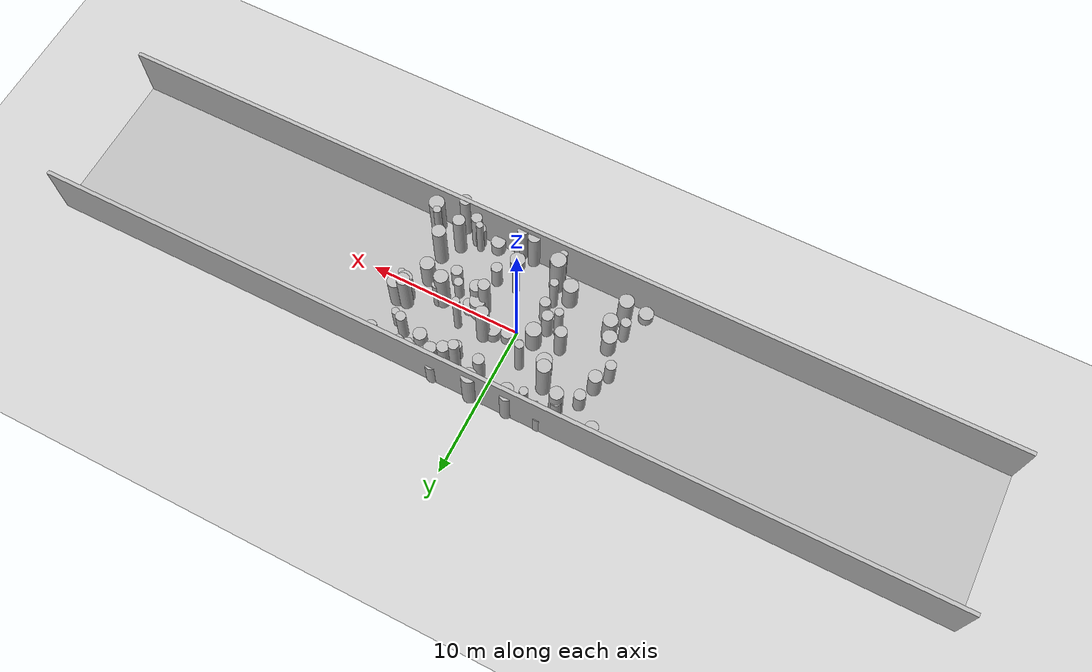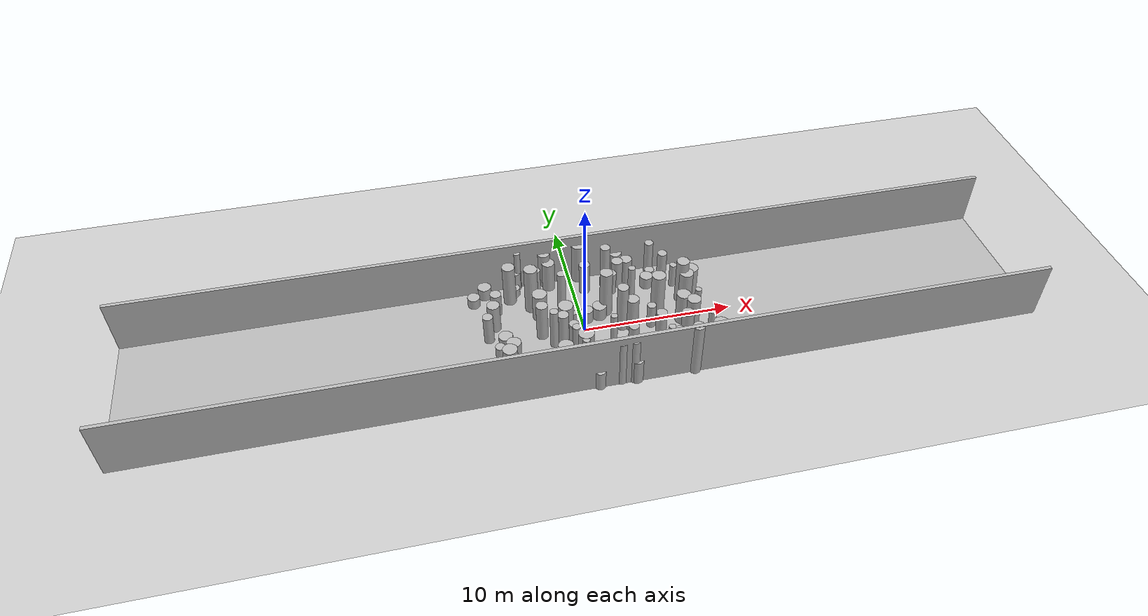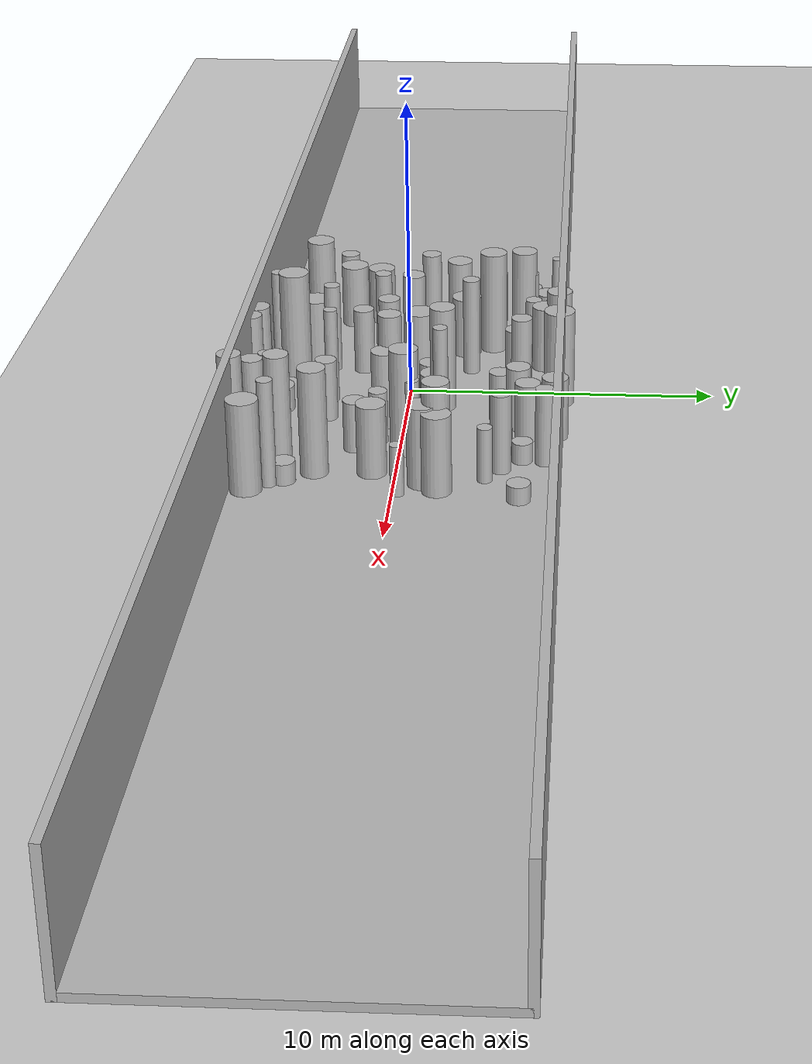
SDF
<sdf version="1.4">
 <world name="default">
  <include><uri>model://ground_plane</uri></include>
  <include><uri>model://sun</uri></include>
  <model name="forest">
   <static>true</static>
   <link name="cylinder1">
    <pose>3.2564242032673008 0.07752517679849902 0.6887090707186099 0 0 0</pose>
    <visual name="visual">
     <geometry>
      <cylinder><radius>0.3346961968090023</radius><length>1.3774181414372197</length></cylinder>
     </geometry>
    </visual>
    <collision name="collision">
     <geometry>
      <cylinder><radius>0.3346961968090023</radius><length>1.3774181414372197</length></cylinder>
     </geometry>
     <max_contacts>0</max_contacts>
    </collision>
   </link>
   <link name="cylinder3">
    <pose>-5.122488635472312 -2.3613867359242913 1.2156791975781638 0 0 0</pose>
    <visual name="visual">
     <geometry>
      <cylinder><radius>0.4657114707113331</radius><length>2.4313583951563276</length></cylinder>
     </geometry>
    </visual>
    <collision name="collision">
     <geometry>
      <cylinder><radius>0.4657114707113331</radius><length>2.4313583951563276</length></cylinder>
     </geometry>
     <max_contacts>0</max_contacts>
    </collision>
   </link>
   <link name="cylinder7">
    <pose>-2.8999232739820577 -0.09374757711382031 1.506481006574513 0 0 0</pose>
    <visual name="visual">
     <geometry>
      <cylinder><radius>0.3824475917245142</radius><length>3.012962013149026</length></cylinder>
     </geometry>
    </visual>
    <collision name="collision">
     <geometry>
      <cylinder><radius>0.3824475917245142</radius><length>3.012962013149026</length></cylinder>
     </geometry>
     <max_contacts>0</max_contacts>
    </collision>
   </link>
   <link name="cylinder9">
    <pose>-1.802328232285305 4.905136888040609 1.4747844364075426 0 0 0</pose>
    <visual name="visual">
     <geometry>
      <cylinder><radius>0.4163657963996544</radius><length>2.9495688728150853</length></cylinder>
     </geometry>
    </visual>
    <collision name="collision">
     <geometry>
      <cylinder><radius>0.4163657963996544</radius><length>2.9495688728150853</length></cylinder>
     </geometry>
     <max_contacts>0</max_contacts>
    </collision>
   </link>
   <link name="cylinder10">
    <pose>6.791761685345708 2.8088955088722827 1.023787186079001 0 0 0</pose>
    <visual name="visual">
     <geometry>
      <cylinder><radius>0.23918400872475332</radius><length>2.047574372158002</length></cylinder>
     </geometry>
    </visual>
    <collision name="collision">
     <geometry>
      <cylinder><radius>0.23918400872475332</radius><length>2.047574372158002</length></cylinder>
     </geometry>
     <max_contacts>0</max_contacts>
    </collision>
   </link>
   <link name="cylinder14">
    <pose>-0.9298519685459574 -4.436935589565988 1.9091290417879494 0 0 0</pose>
    <visual name="visual">
     <geometry>
      <cylinder><radius>0.23941363625729387</radius><length>3.818258083575899</length></cylinder>
     </geometry>
    </visual>
    <collision name="collision">
     <geometry>
      <cylinder><radius>0.23941363625729387</radius><length>3.818258083575899</length></cylinder>
     </geometry>
     <max_contacts>0</max_contacts>
    </collision>
   </link>
   <link name="cylinder15">
    <pose>6.104734048057843 3.266509318063447 1.4293813778876574 0 0 0</pose>
    <visual name="visual">
     <geometry>
      <cylinder><radius>0.32012026691112394</radius><length>2.858762755775315</length></cylinder>
     </geometry>
    </visual>
    <collision name="collision">
     <geometry>
      <cylinder><radius>0.32012026691112394</radius><length>2.858762755775315</length></cylinder>
     </geometry>
     <max_contacts>0</max_contacts>
    </collision>
   </link>
   <link name="cylinder16">
    <pose>5.537779644955908 4.593302339712308 1.3898717767210509 0 0 0</pose>
    <visual name="visual">
     <geometry>
      <cylinder><radius>0.29707722237790335</radius><length>2.7797435534421018</length></cylinder>
     </geometry>
    </visual>
    <collision name="collision">
     <geometry>
      <cylinder><radius>0.29707722237790335</radius><length>2.7797435534421018</length></cylinder>
     </geometry>
     <max_contacts>0</max_contacts>
    </collision>
   </link>
   <link name="cylinder17">
    <pose>-4.492476951617313 3.7887865394801725 1.2449095618742323 0 0 0</pose>
    <visual name="visual">
     <geometry>
      <cylinder><radius>0.34079880354094694</radius><length>2.4898191237484646</length></cylinder>
     </geometry>
    </visual>
    <collision name="collision">
     <geometry>
      <cylinder><radius>0.34079880354094694</radius><length>2.4898191237484646</length></cylinder>
     </geometry>
     <max_contacts>0</max_contacts>
    </collision>
   </link>
   <link name="cylinder21">
    <pose>6.955385285126042 1.345967827157315 1.8070522659248547 0 0 0</pose>
    <visual name="visual">
     <geometry>
      <cylinder><radius>0.42112964293394906</radius><length>3.6141045318497094</length></cylinder>
     </geometry>
    </visual>
    <collision name="collision">
     <geometry>
      <cylinder><radius>0.42112964293394906</radius><length>3.6141045318497094</length></cylinder>
     </geometry>
     <max_contacts>0</max_contacts>
    </collision>
   </link>
   <link name="cylinder22">
    <pose>6.044731473526809 -4.981266680851473 1.986304914909412 0 0 0</pose>
    <visual name="visual">
     <geometry>
      <cylinder><radius>0.3771859304635002</radius><length>3.972609829818824</length></cylinder>
     </geometry>
    </visual>
    <collision name="collision">
     <geometry>
      <cylinder><radius>0.3771859304635002</radius><length>3.972609829818824</length></cylinder>
     </geometry>
     <max_contacts>0</max_contacts>
    </collision>
   </link>
   <link name="cylinder25">
    <pose>-0.17187193934478628 -4.988892364082588 0.6999133182070076 0 0 0</pose>
    <visual name="visual">
     <geometry>
      <cylinder><radius>0.3573136815506278</radius><length>1.3998266364140153</length></cylinder>
     </geometry>
    </visual>
    <collision name="collision">
     <geometry>
      <cylinder><radius>0.3573136815506278</radius><length>1.3998266364140153</length></cylinder>
     </geometry>
     <max_contacts>0</max_contacts>
    </collision>
   </link>
   <link name="cylinder27">
    <pose>-3.634349828456262 4.81314828473171 1.6950890789939468 0 0 0</pose>
    <visual name="visual">
     <geometry>
      <cylinder><radius>0.2065707765437049</radius><length>3.3901781579878936</length></cylinder>
     </geometry>
    </visual>
    <collision name="collision">
     <geometry>
      <cylinder><radius>0.2065707765437049</radius><length>3.3901781579878936</length></cylinder>
     </geometry>
     <max_contacts>0</max_contacts>
    </collision>
   </link>
   <link name="cylinder28">
    <pose>1.3085077485909977 -2.460347573580645 1.7272098805406635 0 0 0</pose>
    <visual name="visual">
     <geometry>
      <cylinder><radius>0.2170416878893495</radius><length>3.454419761081327</length></cylinder>
     </geometry>
    </visual>
    <collision name="collision">
     <geometry>
      <cylinder><radius>0.2170416878893495</radius><length>3.454419761081327</length></cylinder>
     </geometry>
     <max_contacts>0</max_contacts>
    </collision>
   </link>
   <link name="cylinder29">
    <pose>2.404971013464589 -0.4310649447777912 1.9083270513550894 0 0 0</pose>
    <visual name="visual">
     <geometry>
      <cylinder><radius>0.37260937327539334</radius><length>3.816654102710179</length></cylinder>
     </geometry>
    </visual>
    <collision name="collision">
     <geometry>
      <cylinder><radius>0.37260937327539334</radius><length>3.816654102710179</length></cylinder>
     </geometry>
     <max_contacts>0</max_contacts>
    </collision>
   </link>
   <link name="cylinder31">
    <pose>0.728083989314456 3.54254486332143 1.3202315058720475 0 0 0</pose>
    <visual name="visual">
     <geometry>
      <cylinder><radius>0.3638279688099043</radius><length>2.640463011744095</length></cylinder>
     </geometry>
    </visual>
    <collision name="collision">
     <geometry>
      <cylinder><radius>0.3638279688099043</radius><length>2.640463011744095</length></cylinder>
     </geometry>
     <max_contacts>0</max_contacts>
    </collision>
   </link>
   <link name="cylinder32">
    <pose>1.6788921358952607 1.1993942715457875 1.8939832569953592 0 0 0</pose>
    <visual name="visual">
     <geometry>
      <cylinder><radius>0.4148775585149604</radius><length>3.7879665139907184</length></cylinder>
     </geometry>
    </visual>
    <collision name="collision">
     <geometry>
      <cylinder><radius>0.4148775585149604</radius><length>3.7879665139907184</length></cylinder>
     </geometry>
     <max_contacts>0</max_contacts>
    </collision>
   </link>
   <link name="cylinder36">
    <pose>-6.6973774161171065 -4.380743526352093 0.5086563272206437 0 0 0</pose>
    <visual name="visual">
     <geometry>
      <cylinder><radius>0.46342555181468237</radius><length>1.0173126544412874</length></cylinder>
     </geometry>
    </visual>
    <collision name="collision">
     <geometry>
      <cylinder><radius>0.46342555181468237</radius><length>1.0173126544412874</length></cylinder>
     </geometry>
     <max_contacts>0</max_contacts>
    </collision>
   </link>
   <link name="cylinder38">
    <pose>2.26524067411021 3.833357288593625 1.1937416955672315 0 0 0</pose>
    <visual name="visual">
     <geometry>
      <cylinder><radius>0.2292795001273905</radius><length>2.387483391134463</length></cylinder>
     </geometry>
    </visual>
    <collision name="collision">
     <geometry>
      <cylinder><radius>0.2292795001273905</radius><length>2.387483391134463</length></cylinder>
     </geometry>
     <max_contacts>0</max_contacts>
    </collision>
   </link>
   <link name="cylinder39">
    <pose>-2.7162705476524422 1.7193987070710506 1.1589220702754321 0 0 0</pose>
    <visual name="visual">
     <geometry>
      <cylinder><radius>0.49349913281860774</radius><length>2.3178441405508643</length></cylinder>
     </geometry>
    </visual>
    <collision name="collision">
     <geometry>
      <cylinder><radius>0.49349913281860774</radius><length>2.3178441405508643</length></cylinder>
     </geometry>
     <max_contacts>0</max_contacts>
    </collision>
   </link>
   <link name="cylinder41">
    <pose>-5.509328714808603 2.6333064211266564 1.0193684135478573 0 0 0</pose>
    <visual name="visual">
     <geometry>
      <cylinder><radius>0.36856713328046853</radius><length>2.0387368270957147</length></cylinder>
     </geometry>
    </visual>
    <collision name="collision">
     <geometry>
      <cylinder><radius>0.36856713328046853</radius><length>2.0387368270957147</length></cylinder>
     </geometry>
     <max_contacts>0</max_contacts>
    </collision>
   </link>
   <link name="cylinder44">
    <pose>3.0273326932905924 -0.5800720216594293 1.405011788090321 0 0 0</pose>
    <visual name="visual">
     <geometry><cylinder><radius>0.415455200806534</radius><length>2.810023576180642</length></cylinder></geometry>
    </visual>
    <collision name="collision">
     <geometry><cylinder><radius>0.415455200806534</radius><length>2.810023576180642</length></cylinder></geometry>
     <max_contacts>0</max_contacts>
    </collision>
   </link>
   <link name="cylinder46">
    <pose>5.783984864103488 -3.5918344635417387 1.9369772607824403 0 0 0</pose>
    <visual name="visual">
     <geometry>
      <cylinder><radius>0.391452424119965</radius><length>3.8739545215648805</length></cylinder>
     </geometry>
    </visual>
    <collision name="collision">
     <geometry>
      <cylinder><radius>0.391452424119965</radius><length>3.8739545215648805</length></cylinder>
     </geometry>
     <max_contacts>0</max_contacts>
    </collision>
   </link>
   <link name="cylinder49">
    <pose>7.8100908553485695 0.22763244544070194 0.9541941109467907 0 0 0</pose>
    <visual name="visual">
     <geometry>
      <cylinder><radius>0.21466843039778039</radius><length>1.9083882218935815</length></cylinder>
     </geometry>
    </visual>
    <collision name="collision">
     <geometry>
      <cylinder><radius>0.21466843039778039</radius><length>1.9083882218935815</length></cylinder>
     </geometry>
     <max_contacts>0</max_contacts>
    </collision>
   </link>
   <link name="cylinder51">
    <pose>2.6313243981090366 -2.4872664898439076 1.1429433010443504 0 0 0</pose>
    <visual name="visual">
     <geometry>
      <cylinder><radius>0.34634073661418713</radius><length>2.2858866020887008</length></cylinder>
     </geometry>
    </visual>
    <collision name="collision">
     <geometry>
      <cylinder><radius>0.34634073661418713</radius><length>2.2858866020887008</length></cylinder>
     </geometry>
     <max_contacts>0</max_contacts>
    </collision>
   </link>
   <link name="cylinder56">
    <pose>-1.099160007991685 -1.6428546513628994 1.2392589163798748 0 0 0</pose>
    <visual name="visual">
     <geometry>
      <cylinder><radius>0.34151896409971805</radius><length>2.4785178327597497</length></cylinder>
     </geometry>
    </visual>
    <collision name="collision">
     <geometry>
      <cylinder><radius>0.34151896409971805</radius><length>2.4785178327597497</length></cylinder>
     </geometry>
     <max_contacts>0</max_contacts>
    </collision>
   </link>
   <link name="cylinder58">
    <pose>-5.860930529794846 1.3039277972030057 1.1827003225075265 0 0 0</pose>
    <visual name="visual">
     <geometry><cylinder><radius>0.427066298406256</radius><length>2.365400645015053</length></cylinder></geometry>
    </visual>
    <collision name="collision">
     <geometry><cylinder><radius>0.427066298406256</radius><length>2.365400645015053</length></cylinder></geometry>
     <max_contacts>0</max_contacts>
    </collision>
   </link>
   <link name="cylinder61">
    <pose>4.32019239198987 -0.6622430054170048 1.0125005073656888 0 0 0</pose>
    <visual name="visual">
     <geometry>
      <cylinder><radius>0.29732309763795045</radius><length>2.0250010147313775</length></cylinder>
     </geometry>
    </visual>
    <collision name="collision">
     <geometry>
      <cylinder><radius>0.29732309763795045</radius><length>2.0250010147313775</length></cylinder>
     </geometry>
     <max_contacts>0</max_contacts>
    </collision>
   </link>
   <link name="cylinder66">
    <pose>7.10603062882609 -3.294566665885311 0.4725335632491016 0 0 0</pose>
    <visual name="visual">
     <geometry>
      <cylinder><radius>0.37222967705433707</radius><length>0.9450671264982032</length></cylinder>
     </geometry>
    </visual>
    <collision name="collision">
     <geometry>
      <cylinder><radius>0.37222967705433707</radius><length>0.9450671264982032</length></cylinder>
     </geometry>
     <max_contacts>0</max_contacts>
    </collision>
   </link>
   <link name="cylinder72">
    <pose>2.2266979092676387 -4.957844107981716 0.9079458496091706 0 0 0</pose>
    <visual name="visual">
     <geometry>
      <cylinder><radius>0.3955183002997471</radius><length>1.8158916992183411</length></cylinder>
     </geometry>
    </visual>
    <collision name="collision">
     <geometry>
      <cylinder><radius>0.3955183002997471</radius><length>1.8158916992183411</length></cylinder>
     </geometry>
     <max_contacts>0</max_contacts>
    </collision>
   </link>
   <link name="cylinder74">
    <pose>5.444044591681436 3.897154498007392 0.4669259545018768 0 0 0</pose>
    <visual name="visual">
     <geometry>
      <cylinder><radius>0.3276150434940689</radius><length>0.9338519090037536</length></cylinder>
     </geometry>
    </visual>
    <collision name="collision">
     <geometry>
      <cylinder><radius>0.3276150434940689</radius><length>0.9338519090037536</length></cylinder>
     </geometry>
     <max_contacts>0</max_contacts>
    </collision>
   </link>
   <link name="cylinder75">
    <pose>-3.991210494456805 4.2090284095127615 0.4389880203142682 0 0 0</pose>
    <visual name="visual">
     <geometry>
      <cylinder><radius>0.3487157258938671</radius><length>0.8779760406285364</length></cylinder>
     </geometry>
    </visual>
    <collision name="collision">
     <geometry>
      <cylinder><radius>0.3487157258938671</radius><length>0.8779760406285364</length></cylinder>
     </geometry>
     <max_contacts>0</max_contacts>
    </collision>
   </link>
   <link name="cylinder76">
    <pose>-0.8300043536209891 -3.911309800937982 1.925598462031068 0 0 0</pose>
    <visual name="visual">
     <geometry>
      <cylinder><radius>0.49771133099787124</radius><length>3.851196924062136</length></cylinder>
     </geometry>
    </visual>
    <collision name="collision">
     <geometry>
      <cylinder><radius>0.49771133099787124</radius><length>3.851196924062136</length></cylinder>
     </geometry>
     <max_contacts>0</max_contacts>
    </collision>
   </link>
   <link name="cylinder86">
    <pose>6.5360003193010066 -2.4213013501345726 1.8937233072710862 0 0 0</pose>
    <visual name="visual">
     <geometry>
      <cylinder><radius>0.43426102784554876</radius><length>3.7874466145421724</length></cylinder>
     </geometry>
    </visual>
    <collision name="collision">
     <geometry>
      <cylinder><radius>0.43426102784554876</radius><length>3.7874466145421724</length></cylinder>
     </geometry>
     <max_contacts>0</max_contacts>
    </collision>
   </link>
   <link name="cylinder87">
    <pose>2.224524331369583 3.7613691120727317 1.839508305520297 0 0 0</pose>
    <visual name="visual">
     <geometry>
      <cylinder><radius>0.3326603079593494</radius><length>3.679016611040594</length></cylinder>
     </geometry>
    </visual>
    <collision name="collision">
     <geometry>
      <cylinder><radius>0.3326603079593494</radius><length>3.679016611040594</length></cylinder>
     </geometry>
     <max_contacts>0</max_contacts>
    </collision>
   </link>
   <link name="cylinder94">
    <pose>2.0167772814082454 -4.101800145312881 0.5404346776892284 0 0 0</pose>
    <visual name="visual">
     <geometry>
      <cylinder><radius>0.4892853747842669</radius><length>1.0808693553784567</length></cylinder>
     </geometry>
    </visual>
    <collision name="collision">
     <geometry>
      <cylinder><radius>0.4892853747842669</radius><length>1.0808693553784567</length></cylinder>
     </geometry>
     <max_contacts>0</max_contacts>
    </collision>
   </link>
   <link name="cylinder96">
    <pose>8.032357894291543 3.8770866249073848 0.41748185190403564 0 0 0</pose>
    <visual name="visual">
     <geometry>
      <cylinder><radius>0.3667689242908239</radius><length>0.8349637038080713</length></cylinder>
     </geometry>
    </visual>
    <collision name="collision">
     <geometry>
      <cylinder><radius>0.3667689242908239</radius><length>0.8349637038080713</length></cylinder>
     </geometry>
     <max_contacts>0</max_contacts>
    </collision>
   </link>
   <link name="cylinder98">
    <pose>0.2851709550141237 0.703721933528235 0.5992735812576785 0 0 0</pose>
    <visual name="visual">
     <geometry>
      <cylinder><radius>0.3905447183202788</radius><length>1.198547162515357</length></cylinder>
     </geometry>
    </visual>
    <collision name="collision">
     <geometry>
      <cylinder><radius>0.3905447183202788</radius><length>1.198547162515357</length></cylinder>
     </geometry>
     <max_contacts>0</max_contacts>
    </collision>
   </link>
   <link name="cylinder100">
    <pose>-5.500254357732036 -1.4543770781961705 1.0914578403572304 0 0 0</pose>
    <visual name="visual">
     <geometry>
      <cylinder><radius>0.45783312673172627</radius><length>2.1829156807144607</length></cylinder>
     </geometry>
    </visual>
    <collision name="collision">
     <geometry>
      <cylinder><radius>0.45783312673172627</radius><length>2.1829156807144607</length></cylinder>
     </geometry>
     <max_contacts>0</max_contacts>
    </collision>
   </link>
   <link name="cylinder101">
    <pose>-4.422683067388011 3.6356610109516136 1.6719912325273039 0 0 0</pose>
    <visual name="visual">
     <geometry>
      <cylinder><radius>0.42933856574625584</radius><length>3.3439824650546077</length></cylinder>
     </geometry>
    </visual>
    <collision name="collision">
     <geometry>
      <cylinder><radius>0.42933856574625584</radius><length>3.3439824650546077</length></cylinder>
     </geometry>
     <max_contacts>0</max_contacts>
    </collision>
   </link>
   <link name="cylinder103">
    <pose>-2.5066376242943207 4.016763955130241 1.1631307201525414 0 0 0</pose>
    <visual name="visual">
     <geometry>
      <cylinder><radius>0.27461047342937306</radius><length>2.3262614403050828</length></cylinder>
     </geometry>
    </visual>
    <collision name="collision">
     <geometry>
      <cylinder><radius>0.27461047342937306</radius><length>2.3262614403050828</length></cylinder>
     </geometry>
     <max_contacts>0</max_contacts>
    </collision>
   </link>
   <link name="cylinder107">
    <pose>5.241051815893687 0.4731844641226157 1.4195543714200514 0 0 0</pose>
    <visual name="visual">
     <geometry>
      <cylinder><radius>0.24144562408811893</radius><length>2.8391087428401027</length></cylinder>
     </geometry>
    </visual>
    <collision name="collision">
     <geometry>
      <cylinder><radius>0.24144562408811893</radius><length>2.8391087428401027</length></cylinder>
     </geometry>
     <max_contacts>0</max_contacts>
    </collision>
   </link>
   <link name="cylinder113">
    <pose>7.116439502174096 0.9202964245391847 1.4633764514039878 0 0 0</pose>
    <visual name="visual">
     <geometry>
      <cylinder><radius>0.45558578414656775</radius><length>2.9267529028079755</length></cylinder>
     </geometry>
    </visual>
    <collision name="collision">
     <geometry>
      <cylinder><radius>0.45558578414656775</radius><length>2.9267529028079755</length></cylinder>
     </geometry>
     <max_contacts>0</max_contacts>
    </collision>
   </link>
   <link name="cylinder115">
    <pose>6.459470260558199 -0.6646382515900031 1.3026173803792296 0 0 0</pose>
    <visual name="visual">
     <geometry>
      <cylinder><radius>0.4611315553172426</radius><length>2.605234760758459</length></cylinder>
     </geometry>
    </visual>
    <collision name="collision">
     <geometry>
      <cylinder><radius>0.4611315553172426</radius><length>2.605234760758459</length></cylinder>
     </geometry>
     <max_contacts>0</max_contacts>
    </collision>
   </link>
   <link name="cylinder119">
    <pose>-3.10721866317013 2.6211135272078803 1.8952184630913569 0 0 0</pose>
    <visual name="visual">
     <geometry>
      <cylinder><radius>0.4472910128579881</radius><length>3.7904369261827138</length></cylinder>
     </geometry>
    </visual>
    <collision name="collision">
     <geometry>
      <cylinder><radius>0.4472910128579881</radius><length>3.7904369261827138</length></cylinder>
     </geometry>
     <max_contacts>0</max_contacts>
    </collision>
   </link>
   <link name="cylinder122">
    <pose>-6.009523771417481 -2.6047292789800713 1.2514950238410687 0 0 0</pose>
    <visual name="visual">
     <geometry>
      <cylinder><radius>0.31922994734312793</radius><length>2.5029900476821374</length></cylinder>
     </geometry>
    </visual>
    <collision name="collision">
     <geometry>
      <cylinder><radius>0.31922994734312793</radius><length>2.5029900476821374</length></cylinder>
     </geometry>
     <max_contacts>0</max_contacts>
    </collision>
   </link>
   <link name="cylinder125">
    <pose>1.1603264919994984 0.8779569742306439 0.6091541743367016 0 0 0</pose>
    <visual name="visual">
     <geometry>
      <cylinder><radius>0.4720576937271316</radius><length>1.2183083486734032</length></cylinder>
     </geometry>
    </visual>
    <collision name="collision">
     <geometry>
      <cylinder><radius>0.4720576937271316</radius><length>1.2183083486734032</length></cylinder>
     </geometry>
     <max_contacts>0</max_contacts>
    </collision>
   </link>
   <link name="cylinder128">
    <pose>1.2312783034042702 -4.812102668322968 1.7473601629054885 0 0 0</pose>
    <visual name="visual">
     <geometry>
      <cylinder><radius>0.3873342880560858</radius><length>3.494720325810977</length></cylinder>
     </geometry>
    </visual>
    <collision name="collision">
     <geometry>
      <cylinder><radius>0.3873342880560858</radius><length>3.494720325810977</length></cylinder>
     </geometry>
     <max_contacts>0</max_contacts>
    </collision>
   </link>
   <link name="cylinder133">
    <pose>-0.6384066845830922 0.8605048457410174 0.48222895371376595 0 0 0</pose>
    <visual name="visual">
     <geometry>
      <cylinder><radius>0.22999002552626188</radius><length>0.9644579074275319</length></cylinder>
     </geometry>
    </visual>
    <collision name="collision">
     <geometry>
      <cylinder><radius>0.22999002552626188</radius><length>0.9644579074275319</length></cylinder>
     </geometry>
     <max_contacts>0</max_contacts>
    </collision>
   </link>
   <link name="cylinder136">
    <pose>-5.566408471592144 -3.532695227493554 1.3078229404827217 0 0 0</pose>
    <visual name="visual">
     <geometry>
      <cylinder><radius>0.29755975626711756</radius><length>2.6156458809654435</length></cylinder>
     </geometry>
    </visual>
    <collision name="collision">
     <geometry>
      <cylinder><radius>0.29755975626711756</radius><length>2.6156458809654435</length></cylinder>
     </geometry>
     <max_contacts>0</max_contacts>
    </collision>
   </link>
   <link name="cylinder137">
    <pose>-1.1700303839122341 -2.699923330782321 1.640385474507456 0 0 0</pose>
    <visual name="visual">
     <geometry><cylinder><radius>0.267976848048443</radius><length>3.280770949014912</length></cylinder></geometry>
    </visual>
    <collision name="collision">
     <geometry><cylinder><radius>0.267976848048443</radius><length>3.280770949014912</length></cylinder></geometry>
     <max_contacts>0</max_contacts>
    </collision>
   </link>
   <link name="cylinder140">
    <pose>4.626934401320625 -4.106913147268953 1.6910467239292977 0 0 0</pose>
    <visual name="visual">
     <geometry>
      <cylinder><radius>0.2216394680859053</radius><length>3.3820934478585953</length></cylinder>
     </geometry>
    </visual>
    <collision name="collision">
     <geometry>
      <cylinder><radius>0.2216394680859053</radius><length>3.3820934478585953</length></cylinder>
     </geometry>
     <max_contacts>0</max_contacts>
    </collision>
   </link>
   <link name="cylinder142">
    <pose>-3.838571604613449 4.804055825264708 0.8791467744673431 0 0 0</pose>
    <visual name="visual">
     <geometry>
      <cylinder><radius>0.3802103900779473</radius><length>1.7582935489346863</length></cylinder>
     </geometry>
    </visual>
    <collision name="collision">
     <geometry>
      <cylinder><radius>0.3802103900779473</radius><length>1.7582935489346863</length></cylinder>
     </geometry>
     <max_contacts>0</max_contacts>
    </collision>
   </link>
   <link name="cylinder145">
    <pose>-1.2610923842179993 0.24564930138038488 1.1774919631357066 0 0 0</pose>
    <visual name="visual">
     <geometry><cylinder><radius>0.497235585357822</radius><length>2.354983926271413</length></cylinder></geometry>
    </visual>
    <collision name="collision">
     <geometry><cylinder><radius>0.497235585357822</radius><length>2.354983926271413</length></cylinder></geometry>
     <max_contacts>0</max_contacts>
    </collision>
   </link>
   <link name="cylinder150">
    <pose>-6.030613132235285 4.465363949613922 0.5665096309853066 0 0 0</pose>
    <visual name="visual">
     <geometry>
      <cylinder><radius>0.45221519998091275</radius><length>1.1330192619706132</length></cylinder>
     </geometry>
    </visual>
    <collision name="collision">
     <geometry>
      <cylinder><radius>0.45221519998091275</radius><length>1.1330192619706132</length></cylinder>
     </geometry>
     <max_contacts>0</max_contacts>
    </collision>
   </link>
   <link name="cylinder151">
    <pose>-1.993018645452711 -3.3379545927140852 1.22230174100668 0 0 0</pose>
    <visual name="visual">
     <geometry>
      <cylinder><radius>0.49008916372172034</radius><length>2.44460348201336</length></cylinder>
     </geometry>
    </visual>
    <collision name="collision">
     <geometry>
      <cylinder><radius>0.49008916372172034</radius><length>2.44460348201336</length></cylinder>
     </geometry>
     <max_contacts>0</max_contacts>
    </collision>
   </link>
   <link name="cylinder159">
    <pose>-1.1706363858814974 1.9659345921560547 1.7890651505737158 0 0 0</pose>
    <visual name="visual">
     <geometry>
      <cylinder><radius>0.28068448214823016</radius><length>3.5781303011474317</length></cylinder>
     </geometry>
    </visual>
    <collision name="collision">
     <geometry>
      <cylinder><radius>0.28068448214823016</radius><length>3.5781303011474317</length></cylinder>
     </geometry>
     <max_contacts>0</max_contacts>
    </collision>
   </link>
   <link name="cylinder160">
    <pose>3.4042499805260356 1.2441130274225651 1.9054440128771881 0 0 0</pose>
    <visual name="visual">
     <geometry>
      <cylinder><radius>0.2325847920207617</radius><length>3.8108880257543762</length></cylinder>
     </geometry>
    </visual>
    <collision name="collision">
     <geometry>
      <cylinder><radius>0.2325847920207617</radius><length>3.8108880257543762</length></cylinder>
     </geometry>
     <max_contacts>0</max_contacts>
    </collision>
   </link>
   <link name="cylinder165">
    <pose>2.4953413702641143 3.0810369968997247 0.9563822697228642 0 0 0</pose>
    <visual name="visual">
     <geometry>
      <cylinder><radius>0.34438323254054437</radius><length>1.9127645394457284</length></cylinder>
     </geometry>
    </visual>
    <collision name="collision">
     <geometry>
      <cylinder><radius>0.34438323254054437</radius><length>1.9127645394457284</length></cylinder>
     </geometry>
     <max_contacts>0</max_contacts>
    </collision>
   </link>
   <link name="cylinder166">
    <pose>7.362290278479101 -3.7177295969233715 1.8703053154863278 0 0 0</pose>
    <visual name="visual">
     <geometry>
      <cylinder><radius>0.24373839396207628</radius><length>3.7406106309726557</length></cylinder>
     </geometry>
    </visual>
    <collision name="collision">
     <geometry>
      <cylinder><radius>0.24373839396207628</radius><length>3.7406106309726557</length></cylinder>
     </geometry>
     <max_contacts>0</max_contacts>
    </collision>
   </link>
   <link name="cylinder167">
    <pose>3.2125398505969756 4.86048453982886 1.0441431826923835 0 0 0</pose>
    <visual name="visual">
     <geometry><cylinder><radius>0.422002344062831</radius><length>2.088286365384767</length></cylinder></geometry>
    </visual>
    <collision name="collision">
     <geometry><cylinder><radius>0.422002344062831</radius><length>2.088286365384767</length></cylinder></geometry>
     <max_contacts>0</max_contacts>
    </collision>
   </link>
   <link name="cylinder169">
    <pose>-5.546166703613437 -3.5904554685577317 1.5885754695228829 0 0 0</pose>
    <visual name="visual">
     <geometry>
      <cylinder><radius>0.4673160459209079</radius><length>3.1771509390457657</length></cylinder>
     </geometry>
    </visual>
    <collision name="collision">
     <geometry>
      <cylinder><radius>0.4673160459209079</radius><length>3.1771509390457657</length></cylinder>
     </geometry>
     <max_contacts>0</max_contacts>
    </collision>
   </link>
   <link name="cylinder172">
    <pose>-1.590478280632567 4.424470714135513 1.243514839288674 0 0 0</pose>
    <visual name="visual">
     <geometry>
      <cylinder><radius>0.4299119800541013</radius><length>2.487029678577348</length></cylinder>
     </geometry>
    </visual>
    <collision name="collision">
     <geometry>
      <cylinder><radius>0.4299119800541013</radius><length>2.487029678577348</length></cylinder>
     </geometry>
     <max_contacts>0</max_contacts>
    </collision>
   </link>
   <link name="cylinder174">
    <pose>7.758706090208129 -4.3539405966076 1.6409593944286451 0 0 0</pose>
    <visual name="visual">
     <geometry>
      <cylinder><radius>0.4963705236271952</radius><length>3.2819187888572903</length></cylinder>
     </geometry>
    </visual>
    <collision name="collision">
     <geometry>
      <cylinder><radius>0.4963705236271952</radius><length>3.2819187888572903</length></cylinder>
     </geometry>
     <max_contacts>0</max_contacts>
    </collision>
   </link>
   <link name="cylinder188">
    <pose>-1.4470266573648907 4.734941417661922 0.9015656202485766 0 0 0</pose>
    <visual name="visual">
     <geometry>
      <cylinder><radius>0.27967471220406015</radius><length>1.8031312404971531</length></cylinder>
     </geometry>
    </visual>
    <collision name="collision">
     <geometry>
      <cylinder><radius>0.27967471220406015</radius><length>1.8031312404971531</length></cylinder>
     </geometry>
     <max_contacts>0</max_contacts>
    </collision>
   </link>
   <link name="cylinder189">
    <pose>0.6131160524093957 4.938405864046867 1.6335578794943917 0 0 0</pose>
    <visual name="visual">
     <geometry>
      <cylinder><radius>0.4980735044873796</radius><length>3.2671157589887834</length></cylinder>
     </geometry>
    </visual>
    <collision name="collision">
     <geometry>
      <cylinder><radius>0.4980735044873796</radius><length>3.2671157589887834</length></cylinder>
     </geometry>
     <max_contacts>0</max_contacts>
    </collision>
   </link>
   <link name="cylinder190">
    <pose>-2.289556240833573 -1.0700720483900463 1.6405781242805229 0 0 0</pose>
    <visual name="visual">
     <geometry>
      <cylinder><radius>0.27486187298762943</radius><length>3.2811562485610457</length></cylinder>
     </geometry>
    </visual>
    <collision name="collision">
     <geometry>
      <cylinder><radius>0.27486187298762943</radius><length>3.2811562485610457</length></cylinder>
     </geometry>
     <max_contacts>0</max_contacts>
    </collision>
   </link>
   <link name="cylinder193">
    <pose>3.7628872742641377 4.013181316051684 1.0676218536497366 0 0 0</pose>
    <visual name="visual">
     <geometry>
      <cylinder><radius>0.40293417838325185</radius><length>2.135243707299473</length></cylinder>
     </geometry>
    </visual>
    <collision name="collision">
     <geometry>
      <cylinder><radius>0.40293417838325185</radius><length>2.135243707299473</length></cylinder>
     </geometry>
     <max_contacts>0</max_contacts>
    </collision>
   </link>
   <link name="cylinder195">
    <pose>3.05149943899319 3.6915801406246693 1.185281795874378 0 0 0</pose>
    <visual name="visual">
     <geometry>
      <cylinder><radius>0.3858924039605877</radius><length>2.370563591748756</length></cylinder>
     </geometry>
    </visual>
    <collision name="collision">
     <geometry>
      <cylinder><radius>0.3858924039605877</radius><length>2.370563591748756</length></cylinder>
     </geometry>
     <max_contacts>0</max_contacts>
    </collision>
   </link>
   <link name="cylinder196">
    <pose>4.807029594558877 -4.452765310954257 1.0859252916086468 0 0 0</pose>
    <visual name="visual">
     <geometry>
      <cylinder><radius>0.3650281869866502</radius><length>2.1718505832172936</length></cylinder>
     </geometry>
    </visual>
    <collision name="collision">
     <geometry>
      <cylinder><radius>0.3650281869866502</radius><length>2.1718505832172936</length></cylinder>
     </geometry>
     <max_contacts>0</max_contacts>
    </collision>
   </link>
   <link name="cylinder200">
    <pose>-1.6495837161803912 -0.8331595246605943 1.318955913969548 0 0 0</pose>
    <visual name="visual">
     <geometry>
      <cylinder><radius>0.36027879997255075</radius><length>2.637911827939096</length></cylinder>
     </geometry>
    </visual>
    <collision name="collision">
     <geometry>
      <cylinder><radius>0.36027879997255075</radius><length>2.637911827939096</length></cylinder>
     </geometry>
     <max_contacts>0</max_contacts>
    </collision>
   </link>
   <link name="cylinder203">
    <pose>4.817281998680684 -1.3528776124018203 0.96201586678532 0 0 0</pose>
    <visual name="visual">
     <geometry>
      <cylinder><radius>0.36350299064060454</radius><length>1.92403173357064</length></cylinder>
     </geometry>
    </visual>
    <collision name="collision">
     <geometry>
      <cylinder><radius>0.36350299064060454</radius><length>1.92403173357064</length></cylinder>
     </geometry>
     <max_contacts>0</max_contacts>
    </collision>
   </link>
   <link name="cylinder206">
    <pose>-6.878045456349163 3.777222922355506 0.490322284063209 0 0 0</pose>
    <visual name="visual">
     <geometry>
      <cylinder><radius>0.41901337618464934</radius><length>0.980644568126418</length></cylinder>
     </geometry>
    </visual>
    <collision name="collision">
     <geometry>
      <cylinder><radius>0.41901337618464934</radius><length>0.980644568126418</length></cylinder>
     </geometry>
     <max_contacts>0</max_contacts>
    </collision>
   </link>
   <link name="cylinder207">
    <pose>4.963816452319055 0.21644105216169862 1.8832378154931793 0 0 0</pose>
    <visual name="visual">
     <geometry>
      <cylinder><radius>0.45431777516319277</radius><length>3.7664756309863585</length></cylinder>
     </geometry>
    </visual>
    <collision name="collision">
     <geometry>
      <cylinder><radius>0.45431777516319277</radius><length>3.7664756309863585</length></cylinder>
     </geometry>
     <max_contacts>0</max_contacts>
    </collision>
   </link>
   <link name="cylinder213">
    <pose>5.005090154826991 3.1335995336362394 0.5685096305349349 0 0 0</pose>
    <visual name="visual">
     <geometry>
      <cylinder><radius>0.4346253474888677</radius><length>1.1370192610698697</length></cylinder>
     </geometry>
    </visual>
    <collision name="collision">
     <geometry>
      <cylinder><radius>0.4346253474888677</radius><length>1.1370192610698697</length></cylinder>
     </geometry>
     <max_contacts>0</max_contacts>
    </collision>
   </link>
   <link name="cylinder216">
    <pose>3.607978288446141 -4.5673051707190995 0.650798934469839 0 0 0</pose>
    <visual name="visual">
     <geometry><cylinder><radius>0.455449013451841</radius><length>1.301597868939678</length></cylinder></geometry>
    </visual>
    <collision name="collision">
     <geometry><cylinder><radius>0.455449013451841</radius><length>1.301597868939678</length></cylinder></geometry>
     <max_contacts>0</max_contacts>
    </collision>
   </link>
   <link name="cylinder224">
    <pose>2.057108237980117 -4.90227112167333 1.7676449274961064 0 0 0</pose>
    <visual name="visual">
     <geometry>
      <cylinder><radius>0.3405540661754626</radius><length>3.5352898549922127</length></cylinder>
     </geometry>
    </visual>
    <collision name="collision">
     <geometry>
      <cylinder><radius>0.3405540661754626</radius><length>3.5352898549922127</length></cylinder>
     </geometry>
     <max_contacts>0</max_contacts>
    </collision>
   </link>
   <link name="cylinder225">
    <pose>5.013033285065298 -4.462170033449731 1.6826622566719416 0 0 0</pose>
    <visual name="visual">
     <geometry>
      <cylinder><radius>0.34569779017727004</radius><length>3.365324513343883</length></cylinder>
     </geometry>
    </visual>
    <collision name="collision">
     <geometry>
      <cylinder><radius>0.34569779017727004</radius><length>3.365324513343883</length></cylinder>
     </geometry>
     <max_contacts>0</max_contacts>
    </collision>
   </link>
   <link name="cylinder228">
    <pose>7.575094435404381 1.3963612570420691 1.42736087592611 0 0 0</pose>
    <visual name="visual">
     <geometry>
      <cylinder><radius>0.46139030233546086</radius><length>2.85472175185222</length></cylinder>
     </geometry>
    </visual>
    <collision name="collision">
     <geometry>
      <cylinder><radius>0.46139030233546086</radius><length>2.85472175185222</length></cylinder>
     </geometry>
     <max_contacts>0</max_contacts>
    </collision>
   </link>
   <link name="cylinder245">
    <pose>-6.377114201598921 0.26094151437853874 1.2014057262958515 0 0 0</pose>
    <visual name="visual">
     <geometry>
      <cylinder><radius>0.3337184558158621</radius><length>2.402811452591703</length></cylinder>
     </geometry>
    </visual>
    <collision name="collision">
     <geometry>
      <cylinder><radius>0.3337184558158621</radius><length>2.402811452591703</length></cylinder>
     </geometry>
     <max_contacts>0</max_contacts>
    </collision>
   </link>
   <link name="cylinder247">
    <pose>2.68690736694996 -0.04998781643012862 1.0360832800150521 0 0 0</pose>
    <visual name="visual">
     <geometry>
      <cylinder><radius>0.4974605569510116</radius><length>2.0721665600301042</length></cylinder>
     </geometry>
    </visual>
    <collision name="collision">
     <geometry>
      <cylinder><radius>0.4974605569510116</radius><length>2.0721665600301042</length></cylinder>
     </geometry>
     <max_contacts>0</max_contacts>
    </collision>
   </link>
   <link name="cylinder249">
    <pose>-0.9438047233463145 -3.9183470931796505 1.4860328044410287 0 0 0</pose>
    <visual name="visual">
     <geometry>
      <cylinder><radius>0.28268357730364124</radius><length>2.9720656088820574</length></cylinder>
     </geometry>
    </visual>
    <collision name="collision">
     <geometry>
      <cylinder><radius>0.28268357730364124</radius><length>2.9720656088820574</length></cylinder>
     </geometry>
     <max_contacts>0</max_contacts>
    </collision>
   </link>
   <link name="cube0">
    <pose>0 5.0 2.0 0 0 0</pose>
    <visual name="visual"><geometry><box><size>60.0 0.25 4.0</size></box></geometry></visual>
    <collision name="collision">
     <geometry><box><size>60.0 0.25 4.0</size></box></geometry>
     <max_contacts>0</max_contacts>
    </collision>
   </link>
   <link name="cube1">
    <pose>0 -5.0 2.0 0 0 0</pose>
    <visual name="visual"><geometry><box><size>60.0 0.25 4.0</size></box></geometry></visual>
    <collision name="collision">
     <geometry><box><size>60.0 0.25 4.0</size></box></geometry>
     <max_contacts>0</max_contacts>
    </collision>
   </link>
   <link name="cube2">
    <pose>0 0 0.125 0 0 0</pose>
    <visual name="visual"><geometry><box><size>60.0 10 0.25</size></box></geometry></visual>
    <collision name="collision">
     <geometry><box><size>60.0 10 0.25</size></box></geometry>
     <max_contacts>0</max_contacts>
    </collision>
   </link>
  </model>
 </world>
</sdf>
